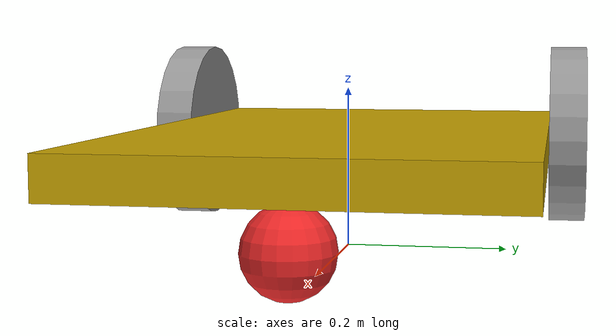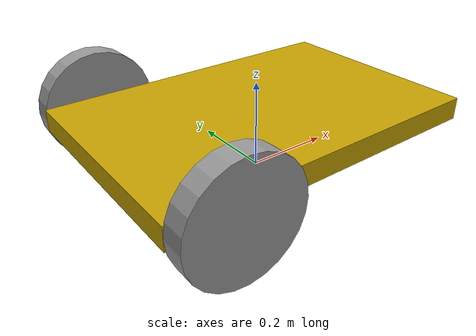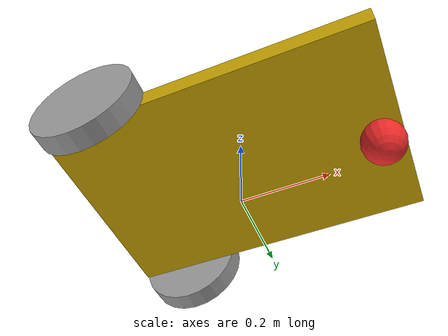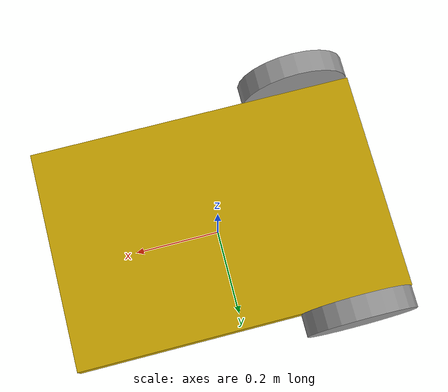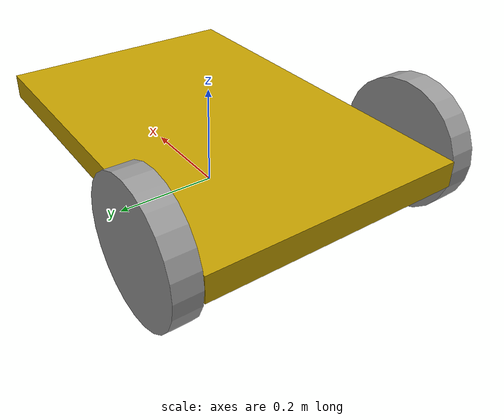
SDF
<?xml version='1.0'?>
<sdf version='1.7'>
  <model name='agv'>
    <link name='chassis'>
      <inertial>
        <mass>10</mass>
        <inertia>
          <ixx>0.216667</ixx>
          <ixy>0</ixy>
          <ixz>0</ixz>
          <iyy>0.477083</iyy>
          <iyz>0</iyz>
          <izz>0.677083</izz>
        </inertia>
        <pose>0 0 0 0 -0 0</pose>
      </inertial>
      <pose>-0 -0 0.125 0 -0 0</pose>
      <gravity>1</gravity>
      <self_collide>0</self_collide>
      <kinematic>0</kinematic>
      <enable_wind>0</enable_wind>
      <visual name='visual'>
        <pose>0 0 0 0 -0 0</pose>
        <geometry>
          <box>
            <size>0.75 0.5 0.05</size>
          </box>
        </geometry>
        <material>
          <lighting>1</lighting>
          <script>
            <uri>file://media/materials/scripts/gazebo.material</uri>
            <name>Gazebo/Grey</name>
          </script>
          <shader type='pixel'>
            <normal_map>__default__</normal_map>
          </shader>
          <ambient>0.769 0.627 0 1</ambient>
          <diffuse>0.7 0.7 0.7 1</diffuse>
          <specular>0.01 0.01 0.01 1</specular>
          <emissive>0 0 0 1</emissive>
        </material>
        <transparency>0</transparency>
        <cast_shadows>1</cast_shadows>
      </visual>
      <collision name='collision'>
        <laser_retro>0</laser_retro>
        <max_contacts>10</max_contacts>
        <pose>0 0 0 0 -0 0</pose>
        <geometry>
          <box>
            <size>0.75 0.5 0.05</size>
          </box>
        </geometry>
        <surface>
          <friction>
            <ode>
              <mu>1</mu>
              <mu2>1</mu2>
              <fdir1>0 0 0</fdir1>
              <slip1>0</slip1>
              <slip2>0</slip2>
            </ode>
            <torsional>
              <coefficient>1</coefficient>
              <patch_radius>0</patch_radius>
              <surface_radius>0</surface_radius>
              <use_patch_radius>1</use_patch_radius>
              <ode>
                <slip>0</slip>
              </ode>
            </torsional>
          </friction>
          <bounce>
            <restitution_coefficient>0</restitution_coefficient>
            <threshold>1e+06</threshold>
          </bounce>
          <contact>
            <collide_without_contact>0</collide_without_contact>
            <collide_without_contact_bitmask>1</collide_without_contact_bitmask>
            <collide_bitmask>1</collide_bitmask>
            <ode>
              <soft_cfm>0</soft_cfm>
              <soft_erp>0.2</soft_erp>
              <kp>1e+13</kp>
              <kd>1</kd>
              <max_vel>0.01</max_vel>
              <min_depth>0</min_depth>
            </ode>
            <bullet>
              <split_impulse>1</split_impulse>
              <split_impulse_penetration_threshold>-0.01</split_impulse_penetration_threshold>
              <soft_cfm>0</soft_cfm>
              <soft_erp>0.2</soft_erp>
              <kp>1e+13</kp>
              <kd>1</kd>
            </bullet>
          </contact>
        </surface>
      </collision>
    </link>
    <link name='caster'>
      <inertial>
        <mass>1</mass>
        <inertia>
          <ixx>0.1</ixx>
          <ixy>0</ixy>
          <ixz>0</ixz>
          <iyy>0.1</iyy>
          <iyz>0</iyz>
          <izz>0.1</izz>
        </inertia>
        <pose>0 0 0 0 -0 0</pose>
      </inertial>
      <pose>0.325 0 0.05 0 -0 0</pose>
      <gravity>1</gravity>
      <self_collide>0</self_collide>
      <kinematic>0</kinematic>
      <enable_wind>0</enable_wind>
      <visual name='visual'>
        <pose>0 0 0 0 -0 0</pose>
        <geometry>
          <sphere>
            <radius>0.05</radius>
          </sphere>
        </geometry>
        <material>
          <lighting>1</lighting>
          <script>
            <uri>file://media/materials/scripts/gazebo.material</uri>
            <name>Gazebo/Grey</name>
          </script>
          <shader type='pixel'>
            <normal_map>__default__</normal_map>
          </shader>
          <ambient>0.937 0.161 0.161 1</ambient>
          <diffuse>0.7 0.7 0.7 1</diffuse>
          <specular>0.01 0.01 0.01 1</specular>
          <emissive>0 0 0 1</emissive>
        </material>
        <transparency>0</transparency>
        <cast_shadows>1</cast_shadows>
      </visual>
      <collision name='collision'>
        <laser_retro>0</laser_retro>
        <max_contacts>10</max_contacts>
        <pose>0 0 0 0 -0 0</pose>
        <geometry>
          <sphere>
            <radius>0.05</radius>
          </sphere>
        </geometry>
        <surface>
          <friction>
            <ode>
              <mu>0.1</mu>
              <mu2>0.1</mu2>
              <fdir1>0 0 0</fdir1>
              <slip1>0</slip1>
              <slip2>0</slip2>
            </ode>
            <torsional>
              <coefficient>1</coefficient>
              <patch_radius>0</patch_radius>
              <surface_radius>0</surface_radius>
              <use_patch_radius>1</use_patch_radius>
              <ode>
                <slip>0</slip>
              </ode>
            </torsional>
          </friction>
          <bounce>
            <restitution_coefficient>0</restitution_coefficient>
            <threshold>1e+06</threshold>
          </bounce>
          <contact>
            <collide_without_contact>0</collide_without_contact>
            <collide_without_contact_bitmask>1</collide_without_contact_bitmask>
            <collide_bitmask>1</collide_bitmask>
            <ode>
              <soft_cfm>0</soft_cfm>
              <soft_erp>0.2</soft_erp>
              <kp>1e+13</kp>
              <kd>1</kd>
              <max_vel>0.01</max_vel>
              <min_depth>0</min_depth>
            </ode>
            <bullet>
              <split_impulse>1</split_impulse>
              <split_impulse_penetration_threshold>-0.01</split_impulse_penetration_threshold>
              <soft_cfm>0</soft_cfm>
              <soft_erp>0.2</soft_erp>
              <kp>1e+13</kp>
              <kd>1</kd>
            </bullet>
          </contact>
        </surface>
      </collision>
    </link>
    <link name='left_wheel'>
      <inertial>
        <mass>1</mass>
        <inertia>
          <ixx>0.145833</ixx>
          <ixy>0</ixy>
          <ixz>0</ixz>
          <iyy>0.145833</iyy>
          <iyz>0</iyz>
          <izz>0.125</izz>
        </inertia>
        <pose>0 0 0 0 -0 0</pose>
      </inertial>
      <pose>-0.25 0.275 0.125 1.5708 -0 0</pose>
      <gravity>1</gravity>
      <self_collide>0</self_collide>
      <kinematic>0</kinematic>
      <enable_wind>0</enable_wind>
      <visual name='visual'>
        <pose>0 0 0 0 -0 0</pose>
        <geometry>
          <cylinder>
            <radius>0.125</radius>
            <length>0.05</length>
          </cylinder>
        </geometry>
        <material>
          <lighting>1</lighting>
          <script>
            <uri>file://media/materials/scripts/gazebo.material</uri>
            <name>Gazebo/Grey</name>
          </script>
          <shader type='pixel'>
            <normal_map>__default__</normal_map>
          </shader>
          <ambient>0.008 0.008 0.008 1</ambient>
          <diffuse>0.7 0.7 0.7 1</diffuse>
          <specular>0.01 0.01 0.01 1</specular>
          <emissive>0 0 0 1</emissive>
        </material>
        <transparency>0</transparency>
        <cast_shadows>1</cast_shadows>
      </visual>
      <collision name='collision'>
        <laser_retro>0</laser_retro>
        <max_contacts>10</max_contacts>
        <pose>0 0 0 0 -0 0</pose>
        <geometry>
          <cylinder>
            <radius>0.125</radius>
            <length>0.05</length>
          </cylinder>
        </geometry>
        <surface>
          <friction>
            <ode>
              <mu>2</mu>
              <mu2>2</mu2>
              <fdir1>0 0 0</fdir1>
              <slip1>0</slip1>
              <slip2>0</slip2>
            </ode>
            <torsional>
              <coefficient>1</coefficient>
              <patch_radius>0</patch_radius>
              <surface_radius>0</surface_radius>
              <use_patch_radius>1</use_patch_radius>
              <ode>
                <slip>0</slip>
              </ode>
            </torsional>
          </friction>
          <bounce>
            <restitution_coefficient>0</restitution_coefficient>
            <threshold>1e+06</threshold>
          </bounce>
          <contact>
            <collide_without_contact>0</collide_without_contact>
            <collide_without_contact_bitmask>1</collide_without_contact_bitmask>
            <collide_bitmask>1</collide_bitmask>
            <ode>
              <soft_cfm>0</soft_cfm>
              <soft_erp>0.2</soft_erp>
              <kp>1e+13</kp>
              <kd>1</kd>
              <max_vel>0.01</max_vel>
              <min_depth>0</min_depth>
            </ode>
            <bullet>
              <split_impulse>1</split_impulse>
              <split_impulse_penetration_threshold>-0.01</split_impulse_penetration_threshold>
              <soft_cfm>0</soft_cfm>
              <soft_erp>0.2</soft_erp>
              <kp>1e+13</kp>
              <kd>1</kd>
            </bullet>
          </contact>
        </surface>
      </collision>
    </link>
    <link name='right_wheel'>
      <inertial>
        <mass>1</mass>
        <inertia>
          <ixx>0.145833</ixx>
          <ixy>0</ixy>
          <ixz>0</ixz>
          <iyy>0.145833</iyy>
          <iyz>0</iyz>
          <izz>0.125</izz>
        </inertia>
        <pose>0 0 0 0 -0 0</pose>
      </inertial>
      <pose>-0.25 -0.275 0.125 1.5708 -0 0</pose>
      <gravity>1</gravity>
      <self_collide>0</self_collide>
      <kinematic>0</kinematic>
      <enable_wind>0</enable_wind>
      <visual name='visual'>
        <pose>0 0 0 0 -0 0</pose>
        <geometry>
          <cylinder>
            <radius>0.125</radius>
            <length>0.05</length>
          </cylinder>
        </geometry>
        <material>
          <lighting>1</lighting>
          <script>
            <uri>file://media/materials/scripts/gazebo.material</uri>
            <name>Gazebo/Grey</name>
          </script>
          <shader type='pixel'>
            <normal_map>__default__</normal_map>
          </shader>
          <ambient>0 0 0 1</ambient>
          <diffuse>0.7 0.7 0.7 1</diffuse>
          <specular>0.01 0.01 0.01 1</specular>
          <emissive>0 0 0 1</emissive>
        </material>
        <transparency>0</transparency>
        <cast_shadows>1</cast_shadows>
      </visual>
      <collision name='collision'>
        <laser_retro>0</laser_retro>
        <max_contacts>10</max_contacts>
        <pose>0 0 0 0 -0 0</pose>
        <geometry>
          <cylinder>
            <radius>0.125</radius>
            <length>0.05</length>
          </cylinder>
        </geometry>
        <surface>
          <friction>
            <ode>
              <mu>2</mu>
              <mu2>2</mu2>
              <fdir1>0 0 0</fdir1>
              <slip1>0</slip1>
              <slip2>0</slip2>
            </ode>
            <torsional>
              <coefficient>1</coefficient>
              <patch_radius>0</patch_radius>
              <surface_radius>0</surface_radius>
              <use_patch_radius>1</use_patch_radius>
              <ode>
                <slip>0</slip>
              </ode>
            </torsional>
          </friction>
          <bounce>
            <restitution_coefficient>0</restitution_coefficient>
            <threshold>1e+06</threshold>
          </bounce>
          <contact>
            <collide_without_contact>0</collide_without_contact>
            <collide_without_contact_bitmask>1</collide_without_contact_bitmask>
            <collide_bitmask>1</collide_bitmask>
            <ode>
              <soft_cfm>0</soft_cfm>
              <soft_erp>0.2</soft_erp>
              <kp>1e+13</kp>
              <kd>1</kd>
              <max_vel>0.01</max_vel>
              <min_depth>0</min_depth>
            </ode>
            <bullet>
              <split_impulse>1</split_impulse>
              <split_impulse_penetration_threshold>-0.01</split_impulse_penetration_threshold>
              <soft_cfm>0</soft_cfm>
              <soft_erp>0.2</soft_erp>
              <kp>1e+13</kp>
              <kd>1</kd>
            </bullet>
          </contact>
        </surface>
      </collision>
    </link>
    <joint name='caster_joint' type='ball'>
      <parent>chassis</parent>
      <child>caster</child>
      <pose>0 0 0 0 -0 0</pose>
      <physics>
        <ode>
          <limit>
            <cfm>0</cfm>
            <erp>0.2</erp>
          </limit>
          <suspension>
            <cfm>0</cfm>
            <erp>0.2</erp>
          </suspension>
        </ode>
      </physics>
    </joint>
    <joint name='left_wheel_joint' type='revolute'>
      <parent>chassis</parent>
      <child>left_wheel</child>
      <pose>0 0 0 0 -0 0</pose>
      <axis>
        <xyz>-0 -0 -1</xyz>
        <limit>
          <lower>-1.79769e+308</lower>
          <upper>1.79769e+308</upper>
          <effort>-1</effort>
          <velocity>-1</velocity>
        </limit>
        <dynamics>
          <spring_reference>0</spring_reference>
          <spring_stiffness>0</spring_stiffness>
          <damping>0</damping>
          <friction>0</friction>
        </dynamics>
      </axis>
      <physics>
        <ode>
          <limit>
            <cfm>0</cfm>
            <erp>0.2</erp>
          </limit>
          <suspension>
            <cfm>0</cfm>
            <erp>0.2</erp>
          </suspension>
        </ode>
      </physics>
    </joint>
    <joint name='right_wheel_joint' type='revolute'>
      <parent>chassis</parent>
      <child>right_wheel</child>
      <pose>0 0 0 0 -0 0</pose>
      <axis>
        <xyz>-0 -0 -1</xyz>
        <limit>
          <lower>-1.79769e+308</lower>
          <upper>1.79769e+308</upper>
          <effort>-1</effort>
          <velocity>-1</velocity>
        </limit>
        <dynamics>
          <spring_reference>0</spring_reference>
          <spring_stiffness>0</spring_stiffness>
          <damping>0</damping>
          <friction>0</friction>
        </dynamics>
      </axis>
      <physics>
        <ode>
          <limit>
            <cfm>0</cfm>
            <erp>0.2</erp>
          </limit>
          <suspension>
            <cfm>0</cfm>
            <erp>0.2</erp>
          </suspension>
        </ode>
      </physics>
    </joint>
    <static>0</static>
    <allow_auto_disable>1</allow_auto_disable>
    <plugin name='differential_drive_controller' filename='libgazebo_ros_diff_drive.so'>
      <ros>
        <namespace>/agv</namespace>
      </ros>
      <left_joint>left_wheel_joint</left_joint>
      <right_joint>right_wheel_joint</right_joint>
      <wheel_separation>0.55</wheel_separation>
      <wheel_diameter>0.25</wheel_diameter>
      <max_wheel_torque>20</max_wheel_torque>
      <max_wheel_acceleration>1.0</max_wheel_acceleration>
      <publish_odom>1</publish_odom>
      <odometry_frame>odom</odometry_frame>
      <robot_base_frame>chassis</robot_base_frame>
    </plugin>
  </model>
</sdf>
